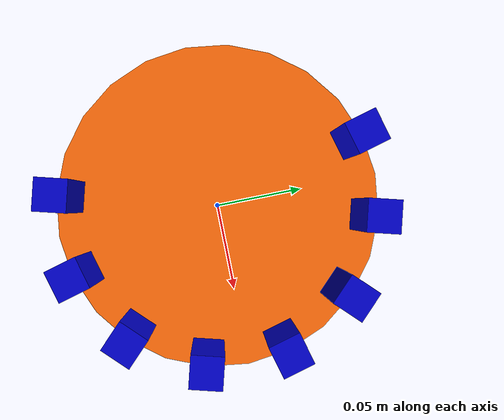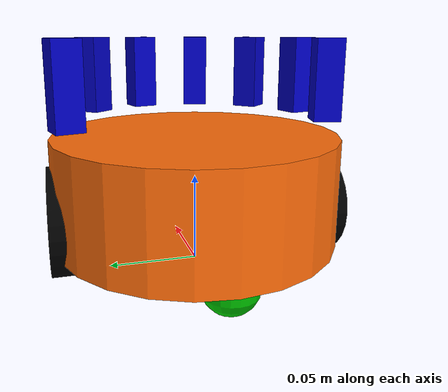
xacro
<?xml version="1.0"?>
<robot name="kulbu" xmlns:xacro="http://www.ros.org/wiki/xacro">
    <xacro:property name="PI" value="3.1415926535897931"/>

    <xacro:property name="chassisHeight" value="0.060"/>
    <xacro:property name="chassisLength" value="0.160"/>
    <xacro:property name="chassisWidth" value="0.160"/>
    <xacro:property name="chassisMass" value="10"/>

    <xacro:property name="wheelWidth" value="0.025"/>
    <xacro:property name="wheelRadius" value="0.030"/>
    <xacro:property name="wheelPos" value="0.2"/>
    <xacro:property name="wheelMass" value="2"/>

    <xacro:property name="casterRadius" value="0.015"/>
    <xacro:property name="casterMass" value="1"/>

    <xacro:property name="bumperHeight" value="0.020"/>
    <xacro:property name="bumperLength" value="${0.70710678118*chassisLength}"/>
    <xacro:property name="bumperWidth" value="${0.70710678118*chassisWidth}"/>
    <xacro:property name="bumperMass" value="0.5"/>

    <xacro:arg name="gui" default="true"/>

    <xacro:include filename="$(find kulbu_description)/urdf/kulbabu.gazebo" />
    <xacro:include filename="$(find kulbu_description)/urdf/materials.xacro" />
    <xacro:include filename="$(find kulbu_description)/urdf/macros.xacro" />

    <link name="base_link" />

    <joint name="base_joint" type="fixed">
        <parent link="base_link"/>
        <child link="chassis_link"/>
    </joint>

    <link name="chassis_link">
        <collision>
            <origin xyz="0 0 ${-0.015+wheelRadius+chassisHeight/2}" rpy="0 0 0"/>
            <geometry>
                <cylinder radius="${chassisLength/2}" length="${chassisHeight}"/>
            </geometry>
        </collision>
        <visual>
            <origin xyz="0 0 ${-0.015+wheelRadius+chassisHeight/2}" rpy="0 0 0"/>
            <geometry>
                <cylinder radius="${chassisLength/2}" length="${chassisHeight}"/>
            </geometry>
            <material name="orange"/>
        </visual>
        <inertial>
            <origin xyz="0 0 ${-0.015+wheelRadius+chassisHeight/2}" rpy="0 0 0"/>
            <mass value="${chassisMass}"/>
            <cylinder_inertia m="${chassisMass}" r="${chassisLength/2}" h="${chassisHeight}"/>
        </inertial>
    </link>

    <joint name="caster_joint" type="fixed">
        <parent link="chassis_link"/>
        <child link="caster_link"/>
    </joint>

    <link name="caster_link">
        <collision>
            <origin xyz="${casterRadius-chassisLength/2} 0 ${wheelRadius-casterRadius}" rpy="0 0 0" />
            <geometry>
                <sphere radius="${casterRadius}" />
            </geometry>
        </collision>
        <visual>
            <origin xyz="${casterRadius-chassisLength/2} 0 ${wheelRadius-casterRadius}" rpy="0 0 0" />
            <geometry>
                <sphere radius="${casterRadius}" />
            </geometry>
            <material name="green"/>
        </visual>
        <inertial>
            <origin xyz="${casterRadius-chassisLength/2} 0 ${wheelRadius-casterRadius}" rpy="0 0 0" />
            <mass value="${casterMass}"/>
            <sphere_inertia m="${casterMass}" r="${casterRadius}"/>
        </inertial>
    </link>

    <!-- EffortJointInterface/VelocityJointInterface -->
    <wheel fb="mid"   lr="left"  tX="0"  tY="0.75"   mu="0.3" interface="VelocityJointInterface" />
    <wheel fb="mid"   lr="right" tX="0"  tY="-0.75"  mu="0.3" interface="VelocityJointInterface" />

    <sensor_gazebo_range name="range_1l" linX="0.07002962240595745"   linY="0.018764380769932733"  linZ="${0.045+wheelRadius+chassisHeight/2}" angR="0" angP="0" angY="0.261799388" />
    <sensor_gazebo_range name="range_2l" linX="0.05126524163602471"   linY="0.051265241636024673"  linZ="${0.045+wheelRadius+chassisHeight/2}" angR="0" angP="0" angY="0.785398163" />
    <sensor_gazebo_range name="range_3l" linX="0.018764380769932802"  linY="0.07002962240595745"   linZ="${0.045+wheelRadius+chassisHeight/2}" angR="0" angP="0" angY="1.308996939" />
    <sensor_gazebo_range name="range_4l" linX="-0.01876438076993273"  linY="0.07002962240595745"   linZ="${0.045+wheelRadius+chassisHeight/2}" angR="0" angP="0" angY="1.832595715" />

    <sensor_gazebo_range name="range_1r" linX="0.07002962240595745"   linY="-0.018764380769932733" linZ="${0.045+wheelRadius+chassisHeight/2}" angR="0" angP="0" angY="-0.261799388" />
    <sensor_gazebo_range name="range_2r" linX="0.05126524163602471"   linY="-0.051265241636024673" linZ="${0.045+wheelRadius+chassisHeight/2}" angR="0" angP="0" angY="-0.785398163" />
    <sensor_gazebo_range name="range_3r" linX="0.018764380769932802"  linY="-0.07002962240595745"  linZ="${0.045+wheelRadius+chassisHeight/2}" angR="0" angP="0" angY="-1.308996939" />
    <sensor_gazebo_range name="range_4r" linX="-0.01876438076993273"  linY="-0.07002962240595745"  linZ="${0.045+wheelRadius+chassisHeight/2}" angR="0" angP="0" angY="-1.832595715" />

    <!-- IMU -->

</robot>

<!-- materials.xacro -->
<robot name="kulbu" xmlns:xacro="http://www.ros.org/wiki/xacro">
    <material name="black">
      <color rgba="0.0 0.0 0.0 1.0"/>
    </material>

    <material name="blue">
      <color rgba="0.0 0.0 0.8 1.0"/>
    </material>

    <material name="green">
      <color rgba="0.0 0.8 0.0 1.0"/>
    </material>

    <material name="yellow">
      <color rgba="0.8 0.8 0.2 1.0"/>
    </material>

    <material name="grey">
      <color rgba="0.2 0.2 0.2 1.0"/>
    </material>

    <material name="orange">
      <color rgba="${255/255} ${108/255} ${10/255} 1.0"/>
    </material>

    <material name="brown">
      <color rgba="${222/255} ${207/255} ${195/255} 1.0"/>
    </material>

    <material name="red">
      <color rgba="0.8 0.0 0.0 1.0"/>
    </material>

    <material name="white">
      <color rgba="1.0 1.0 1.0 1.0"/>
    </material>
</robot>

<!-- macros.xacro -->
<robot name="kulbu" xmlns:xacro="http://www.ros.org/wiki/xacro">
    <xacro:macro name="cylinder_inertia" params="m r h">
        <inertia  ixx="${m*(3*r*r+h*h)/12}" ixy="0" ixz="0"
          iyy="${m*(3*r*r+h*h)/12}" iyz="0"
          izz="${m*r*r/2}"
        />
    </xacro:macro>

    <xacro:macro name="box_inertia" params="m x y z">
        <inertia  ixx="${m*(y*y+z*z)/12}" ixy="0" ixz="0"
          iyy="${m*(x*x+z*z)/12}" iyz="0"
          izz="${m*(x*x+z*z)/12}"
        />
    </xacro:macro>

    <xacro:macro name="sphere_inertia" params="m r">
        <inertia  ixx="${2*m*r*r/5}" ixy="0" ixz="0"
          iyy="${2*m*r*r/5}" iyz="0"
          izz="${2*m*r*r/5}"
        />
    </xacro:macro>

    <xacro:macro name="wheel" params="fb lr tX tY mu interface">
        <link name="${fb}_${lr}_wheel">
            <collision>
                <origin xyz="0 0 0" rpy="0 ${PI/2} ${PI/2}" />
                <geometry>
                    <cylinder length="${wheelWidth}" radius="${wheelRadius}"/>
                </geometry>
            </collision>

            <visual>
                <origin xyz="0 0 0" rpy="0 ${PI/2} ${PI/2}" />
                <geometry>
                    <cylinder length="${wheelWidth}" radius="${wheelRadius}"/>
                </geometry>
                <material name="black"/>
            </visual>

            <inertial>
                <origin xyz="0 0 0" rpy="0 ${PI/2} ${PI/2}" />
                <mass value="${wheelMass}"/>
                <cylinder_inertia m="${wheelMass}" r="${wheelRadius}" h="${wheelWidth}"/>
            </inertial>
        </link>

        <gazebo reference="${fb}_${lr}_wheel">
            <mu1>${mu}</mu1>
            <mu2>${mu}</mu2>
            <kp>1e+13</kp>
            <kd>1.0</kd>
            <material>Gazebo/Black</material>
        </gazebo>

        <joint name="${fb}_${lr}_wheel_joint" type="continuous">
            <parent link="chassis_link"/>
            <child link="${fb}_${lr}_wheel"/>
            <origin xyz="${tX*chassisLength/2} ${tY*wheelWidth/2+tY*chassisWidth/2} ${wheelRadius}" rpy="0 0 0" />
            <axis xyz="0 1 0" rpy="0 0 0" />
            <limit effort="100" velocity="100"/>
            <joint_properties damping="0.0" friction="0.0"/>
        </joint>

        <transmission name="${fb}_${lr}_trans">
            <type>transmission_interface/SimpleTransmission</type>
            <actuator name="${fb}_${lr}_wheel_motor">
                <mechanicalReduction>1</mechanicalReduction>
            </actuator>
            <joint name="${fb}_${lr}_wheel_joint">
                <hardwareInterface>${interface}</hardwareInterface>
            </joint>
        </transmission>

    </xacro:macro>

    <xacro:macro name="sensor_gazebo_range" params="name linX linY linZ angR angP angY">
        <joint name="${name}_joint" type="fixed">
            <axis xyz="0 1 0" />
            <origin xyz="${linX} ${linY} ${linZ}" rpy="${angR} ${angP} ${angY}" />
            <parent link="chassis_link" />
            <child link="${name}_link" />
        </joint>

        <link name="${name}_link">
            <collision>
                <origin xyz="0 0 0" rpy="0 0 0" />
                <geometry>
                    <box size="0.015 0.015 0.045" />
                </geometry>
            </collision>

            <visual>
                <origin xyz="0 0 0" rpy="0 0 0" />
                <geometry>
                    <box size="0.015 0.015 0.045" />
                </geometry>
                <material name="blue" />
            </visual>

            <inertial>
                <mass value="0.001" />
                <origin xyz="0 0 0" rpy="0 0 0" />
                <inertia ixx="0.000000017" ixy="0" ixz="0" iyy="0.000000017" iyz="0" izz="0.000000017" />
            </inertial>
        </link>

        <gazebo reference="${name}_link">
            <material>Gazebo/Blue</material>
            <sensor type="ray" name="${name}_sensor">
                <always_on>true</always_on>
                <update_rate>5.0</update_rate>
                <ray>
                    <range>
                        <min>0.01</min>
                        <max>4.00</max>
                        <resolution>0.01</resolution>
                    </range>
                    <scan>
                      <horizontal>
                        <samples>5</samples>
                        <resolution>1.0</resolution>
                        <min_angle>-0.130899694</min_angle>
                        <max_angle>0.130899694</max_angle>
                      </horizontal>
                      <vertical>
                        <samples>5</samples>
                        <resolution>1</resolution>
                        <min_angle>-0.130899694</min_angle>
                        <max_angle>0.130899694</max_angle>
                      </vertical>
                    </scan>
                  </ray>
                  <plugin name="gazebo_ros_range_${name}" filename="libgazebo_ros_range.so">
                    <robotNamespace>$(arg ns)</robotNamespace>
                    <gaussianNoise>0.005</gaussianNoise>
                    <alwaysOn>true</alwaysOn>
                    <updateRate>5</updateRate>
                    <topicName>${name}</topicName>
                    <frameName>${name}_link</frameName>
                    <fov>0.5</fov>
                    <radiation>ultrasound</radiation>
                  </plugin>
            </sensor>
        </gazebo>
    </xacro:macro>

    <xacro:macro name="sensor_hector_range" params="name linX linY linZ angR angP angY">
        <joint name="${name}_joint" type="fixed">
            <axis xyz="0 1 0" />
            <origin xyz="${linX} ${linY} ${linZ}" rpy="${angR} ${angP} ${angY}" />
            <parent link="chassis_link" />
            <child link="${name}_link" />
        </joint>

        <link name="${name}_link">
            <collision>
                <origin xyz="0 0 0" rpy="0 0 0" />
                <geometry>
                    <box size="0.0 0.0 0.0" />
                </geometry>
            </collision>

            <visual>
                <origin xyz="0 0 0" rpy="0 0 0" />
                <geometry>
                    <box size="0.015 0.045 0.02" />
                </geometry>
                <material name="blue" />
            </visual>

            <inertial>
                <mass value="0.001" />
                <origin xyz="0 0 0" rpy="0 0 0" />
                <inertia ixx="0.000000017" ixy="0" ixz="0" iyy="0.000000017" iyz="0" izz="0.000000017" />
            </inertial>
        </link>

        <gazebo reference="${name}_link">
            <material>Gazebo/Blue</material>
            <sensor type="ray" name="${name}_sensor">
                <always_on>true</always_on>
                <update_rate>15.0</update_rate>
                <ray>
                    <range>
                        <min>0.02</min>
                        <max>4.00</max>
                        <resolution>0.01</resolution>
                    </range>
                    <!-- 15deg, 6 samples, reduce glitching. FIXME: What is glitching? Framerate? -->
                    <scan>
                        <horizontal>
                            <samples>6</samples>
                            <min_angle>-0.130899694</min_angle>
                            <max_angle>0.130899694</max_angle>
                        </horizontal>
                        <vertical>
                            <samples>6</samples>
                            <min_angle>-0.130899694</min_angle>
                            <max_angle>0.130899694</max_angle>
                        </vertical>
                    </scan>
                </ray>
                <plugin name="gazebo_ros_sonar_${name}_controller" filename="libhector_gazebo_ros_sonar.so">
                    <robotNamespace>$(arg ns)</robotNamespace>
                    <gaussianNoise>0.000</gaussianNoise>
                    <topicName>$(arg ns)/${name}</topicName>
                    <frameId>${name}_link</frameId>
                </plugin>
            </sensor>
        </gazebo>
    </xacro:macro>

    <!-- FIXME: Fails unless connected to world frame, I think... -->
    <xacro:macro name="sensor_bump" params="name linX linY linZ angR angP angY">
        <!-- TODO: Macro these reusable joint templates -->
        <joint name="${name}_joint" type="fixed">
            <axis xyz="0 1 0" />
            <origin xyz="${linX} ${linY} ${linZ}" rpy="${angR} ${angP} ${angY}" />
            <parent link="chassis_link" />
            <child link="${name}_link" />
        </joint>

        <link name="${name}_link">
            <collision name="${name}_link_collision">
                <origin xyz="0 0 0" rpy="0 0 0" />
                <geometry>
                    <box size="0.01 0.10 0.01" />
                </geometry>
            </collision>

            <visual>
                <origin xyz="0 0 0" rpy="0 0 0" />
                <geometry>
                    <box size="0.01 0.10 0.01" />
                </geometry>
                <material name="yellow" />
            </visual>

            <inertial>
                <mass value="0.005" />
                <origin xyz="0 0 0" rpy="0 0 0" />
                <box_inertia m="0.005" x="0.01" y="0.10" z="0.01" />
            </inertial>
        </link>

        <gazebo reference="${name}_link">
            <material>Gazebo/Yellow</material>
            <sensor type="contact" name="${name}_sensor">
                <always_on>true</always_on>
                <update_rate>15.0</update_rate>
                <contact>
                    <collision>${name}_link_collision</collision>
                </contact>
                <plugin name="gazebo_ros_bumper_${name}" filename="libgazebo_ros_bumper.so">
                    <robotNamespace>$(arg ns)</robotNamespace>
                    <bumperTopicName>${name}</bumperTopicName>
                    <frameName>${name}_link</frameName>
                </plugin>
            </sensor>
        </gazebo>
    </xacro:macro>

</robot>
